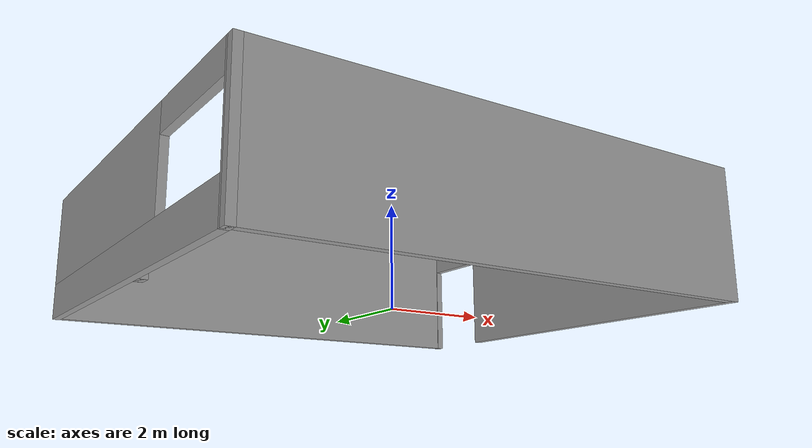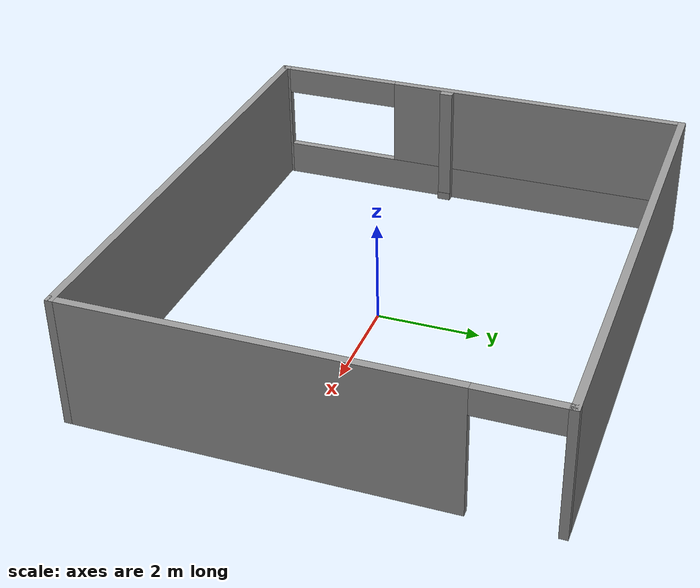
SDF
<?xml version='1.0'?>
<sdf version='1.7'>
  <model name='ambiente206'>
    <pose>-0.147487 0.4084 0 0 -0 0</pose>
    <link name='Wall_1'>
      <collision name='Wall_1_Collision'>
        <geometry>
          <box>
            <size>9.75 0.15 2.5</size>
          </box>
        </geometry>
        <pose>0 0 1.25 0 -0 0</pose>
      </collision>
      <visual name='Wall_1_Visual'>
        <pose>0 0 1.25 0 -0 0</pose>
        <geometry>
          <box>
            <size>9.75 0.15 2.5</size>
          </box>
        </geometry>
        <material>
          <script>
            <uri>file://media/materials/scripts/gazebo.material</uri>
            <name>Gazebo/Grey</name>
          </script>
          <ambient>1 1 1 1</ambient>
        </material>
        <meta>
          <layer>0</layer>
        </meta>
      </visual>
      <pose>-0 -4.3 0 0 -0 3.14159</pose>
    </link>
    <link name='Wall_11'>
      <collision name='Wall_11_Collision'>
        <geometry>
          <box>
            <size>0.26 0.15 2.5</size>
          </box>
        </geometry>
        <pose>0 0 1.25 0 -0 0</pose>
      </collision>
      <visual name='Wall_11_Visual'>
        <pose>0 0 1.25 0 -0 0</pose>
        <geometry>
          <box>
            <size>0.26 0.15 2.5</size>
          </box>
        </geometry>
        <material>
          <script>
            <uri>file://media/materials/scripts/gazebo.material</uri>
            <name>Gazebo/Grey</name>
          </script>
          <ambient>1 1 1 1</ambient>
        </material>
        <meta>
          <layer>0</layer>
        </meta>
      </visual>
      <pose>-4.65327 -0.577436 0 0 -0 1.5708</pose>
    </link>
    <link name='Wall_12'>
      <collision name='Wall_12_Collision'>
        <geometry>
          <box>
            <size>0.26 0.15 0.16</size>
          </box>
        </geometry>
        <pose>0 0 0.08 0 -0 0</pose>
      </collision>
      <visual name='Wall_12_Visual'>
        <pose>0 0 0.08 0 -0 0</pose>
        <geometry>
          <box>
            <size>0.26 0.15 0.16</size>
          </box>
        </geometry>
        <material>
          <script>
            <uri>file://media/materials/scripts/gazebo.material</uri>
            <name>Gazebo/Grey</name>
          </script>
          <ambient>1 1 1 1</ambient>
        </material>
        <meta>
          <layer>0</layer>
        </meta>
      </visual>
      <pose>-4.64571 -0.584997 0 0 -0 -1.5708</pose>
    </link>
    <link name='Wall_2'>
      <pose>-4.8 -0 0 0 -0 1.5708</pose>
      <visual name='Wall_2_Visual_0'>
        <pose>-4.27565 0 1.25 0 -0 0</pose>
        <geometry>
          <box>
            <size>0.198706 0.15 2.5</size>
          </box>
        </geometry>
        <material>
          <script>
            <uri>file://media/materials/scripts/gazebo.material</uri>
            <name>Gazebo/Grey</name>
          </script>
          <ambient>1 1 1 1</ambient>
        </material>
        <meta>
          <layer>0</layer>
        </meta>
      </visual>
      <collision name='Wall_2_Collision_0'>
        <geometry>
          <box>
            <size>0.198706 0.15 2.5</size>
          </box>
        </geometry>
        <pose>-4.27565 0 1.25 0 -0 0</pose>
      </collision>
      <visual name='Wall_2_Visual_1'>
        <pose>0.099353 0 0.35 0 -0 0</pose>
        <geometry>
          <box>
            <size>8.55129 0.15 0.7</size>
          </box>
        </geometry>
        <material>
          <script>
            <uri>file://media/materials/scripts/gazebo.material</uri>
            <name>Gazebo/Grey</name>
          </script>
          <ambient>1 1 1 1</ambient>
        </material>
        <meta>
          <layer>0</layer>
        </meta>
      </visual>
      <collision name='Wall_2_Collision_1'>
        <geometry>
          <box>
            <size>8.55129 0.15 0.7</size>
          </box>
        </geometry>
        <pose>0.099353 0 0.35 0 -0 0</pose>
      </collision>
      <visual name='Wall_2_Visual_2'>
        <pose>1.29935 0 1.6 0 -0 0</pose>
        <geometry>
          <box>
            <size>6.15129 0.15 1.8</size>
          </box>
        </geometry>
        <material>
          <script>
            <uri>file://media/materials/scripts/gazebo.material</uri>
            <name>Gazebo/Grey</name>
          </script>
          <ambient>1 1 1 1</ambient>
        </material>
        <meta>
          <layer>0</layer>
        </meta>
      </visual>
      <collision name='Wall_2_Collision_2'>
        <geometry>
          <box>
            <size>6.15129 0.15 1.8</size>
          </box>
        </geometry>
        <pose>1.29935 0 1.6 0 -0 0</pose>
      </collision>
      <visual name='Wall_2_Visual_3'>
        <pose>-2.97629 0 2.23 0 -0 0</pose>
        <geometry>
          <box>
            <size>2.4 0.15 0.54</size>
          </box>
        </geometry>
        <material>
          <script>
            <uri>file://media/materials/scripts/gazebo.material</uri>
            <name>Gazebo/Grey</name>
          </script>
          <ambient>1 1 1 1</ambient>
        </material>
        <meta>
          <layer>0</layer>
        </meta>
      </visual>
      <collision name='Wall_2_Collision_3'>
        <geometry>
          <box>
            <size>2.4 0.15 0.54</size>
          </box>
        </geometry>
        <pose>-2.97629 0 2.23 0 -0 0</pose>
      </collision>
    </link>
    <link name='Wall_3'>
      <collision name='Wall_3_Collision'>
        <geometry>
          <box>
            <size>9.75 0.15 2.5</size>
          </box>
        </geometry>
        <pose>0 0 1.25 0 -0 0</pose>
      </collision>
      <visual name='Wall_3_Visual'>
        <pose>0 0 1.25 0 -0 0</pose>
        <geometry>
          <box>
            <size>9.75 0.15 2.5</size>
          </box>
        </geometry>
        <material>
          <script>
            <uri>file://media/materials/scripts/gazebo.material</uri>
            <name>Gazebo/Grey</name>
          </script>
          <ambient>1 1 1 1</ambient>
        </material>
        <meta>
          <layer>0</layer>
        </meta>
      </visual>
      <pose>-0 4.3 0 0 -0 0</pose>
    </link>
    <link name='Wall_4'>
      <collision name='Wall_4_Collision'>
        <geometry>
          <box>
            <size>0.15 0.15 2.5</size>
          </box>
        </geometry>
        <pose>0 0 1.25 0 -0 0</pose>
      </collision>
      <visual name='Wall_4_Visual'>
        <pose>0 0 1.25 0 -0 0</pose>
        <geometry>
          <box>
            <size>0.15 0.15 2.5</size>
          </box>
        </geometry>
        <material>
          <script>
            <uri>file://media/materials/scripts/gazebo.material</uri>
            <name>Gazebo/Grey</name>
          </script>
          <ambient>1 1 1 1</ambient>
        </material>
        <meta>
          <layer>0</layer>
        </meta>
      </visual>
      <pose>4.8 4.3 0 0 -0 0</pose>
    </link>
    <link name='Wall_5'>
      <pose>4.8 -0 0 0 -0 -1.5708</pose>
      <visual name='Wall_5_Visual_0'>
        <pose>-4.2949 0 1.25 0 -0 0</pose>
        <geometry>
          <box>
            <size>0.160204 0.15 2.5</size>
          </box>
        </geometry>
        <material>
          <script>
            <uri>file://media/materials/scripts/gazebo.material</uri>
            <name>Gazebo/Grey</name>
          </script>
          <ambient>1 1 1 1</ambient>
        </material>
        <meta>
          <layer>0</layer>
        </meta>
      </visual>
      <collision name='Wall_5_Collision_0'>
        <geometry>
          <box>
            <size>0.160204 0.15 2.5</size>
          </box>
        </geometry>
        <pose>-4.2949 0 1.25 0 -0 0</pose>
      </collision>
      <visual name='Wall_5_Visual_1'>
        <pose>0.830102 0 1.25 0 -0 0</pose>
        <geometry>
          <box>
            <size>7.0898 0.15 2.5</size>
          </box>
        </geometry>
        <material>
          <script>
            <uri>file://media/materials/scripts/gazebo.material</uri>
            <name>Gazebo/Grey</name>
          </script>
          <ambient>1 1 1 1</ambient>
        </material>
        <meta>
          <layer>0</layer>
        </meta>
      </visual>
      <collision name='Wall_5_Collision_1'>
        <geometry>
          <box>
            <size>7.0898 0.15 2.5</size>
          </box>
        </geometry>
        <pose>0.830102 0 1.25 0 -0 0</pose>
      </collision>
      <visual name='Wall_5_Visual_2'>
        <pose>-3.4648 0 2.25 0 -0 0</pose>
        <geometry>
          <box>
            <size>1.5 0.15 0.5</size>
          </box>
        </geometry>
        <material>
          <script>
            <uri>file://media/materials/scripts/gazebo.material</uri>
            <name>Gazebo/Grey</name>
          </script>
          <ambient>1 1 1 1</ambient>
        </material>
        <meta>
          <layer>0</layer>
        </meta>
      </visual>
      <collision name='Wall_5_Collision_2'>
        <geometry>
          <box>
            <size>1.5 0.15 0.5</size>
          </box>
        </geometry>
        <pose>-3.4648 0 2.25 0 -0 0</pose>
      </collision>
    </link>
    <static>1</static>
  </model>
</sdf>
